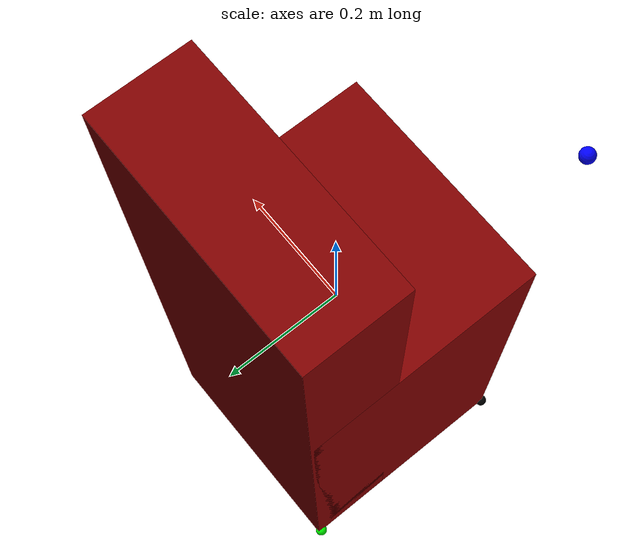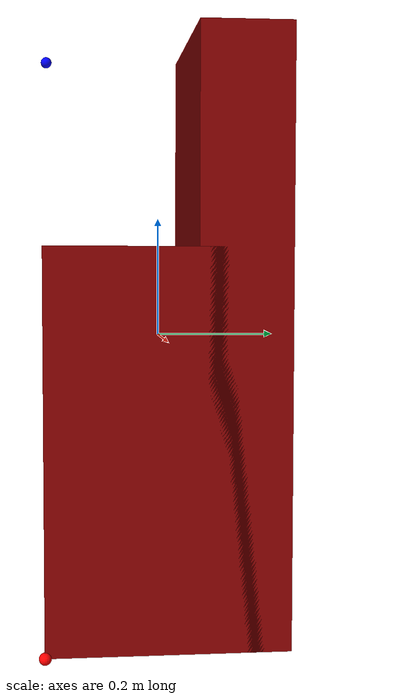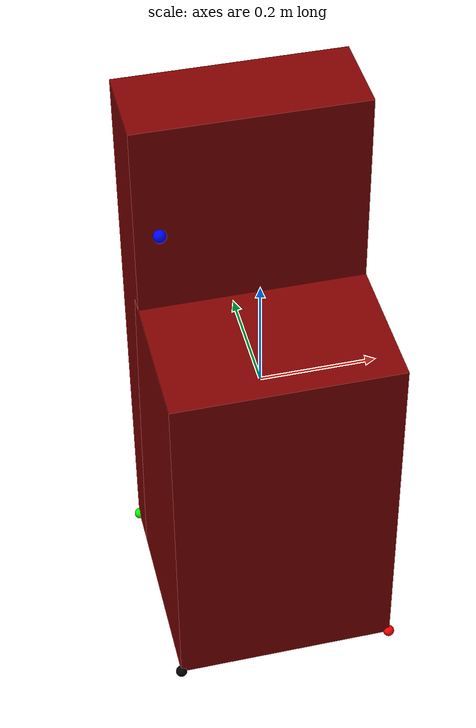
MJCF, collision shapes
<mujoco model="model">
  <asset>
    <texture file="visuals/material_0.png" name="tex-model" type="2d"/>
    <texture type="2d" name="image0" file="visuals/image0.png"/>
    <material name="model" reflectance="0.5" texrepeat="1 1" texture="tex-model" texuniform="false"/>
    <material name="Black_steel" specular="0.5" shininess="0.25" rgba="0.044423 0.048567 0.051766 1.0"/>
    <material name="Plastic_black" specular="0.5" shininess="0.031920879" rgba="0.013314 0.013121 0.013121 1.0"/>
    <material name="Wood" texture="image0" specular="0.5" shininess="0.25"/>
    <mesh file="visuals/model_0.obj" name="model_0_vis" scale="1 1 1"/>
    <mesh file="visuals/model_1.obj" name="model_1_vis" scale="1 1 1"/>
    <mesh file="visuals/model_2.obj" name="model_2_vis" scale="1 1 1"/>
  </asset>
  <default>
    <default class="visual">
      <geom conaffinity="0" contype="0" group="1" type="mesh"/>
    </default>
    <default class="collision">
      <geom group="0" rgba="0.5 0 0 0.5"/>
    </default>
  </default>
  <worldbody>
    <body>
      <!-- exterior bounding box points -->
      <site rgba="0 0 0 1" size="0.01" pos="-0.19248017986037155 -0.1941431276095813 -0.5" name="ext_p0"/>
      <site rgba="1 0 0 1" size="0.01" pos="0.19248017986037155 -0.1941431276095813 -0.5" name="ext_px"/>
      <site rgba="0 1 0 1" size="0.01" pos="-0.19248017986037155 0.1941431276095813 -0.5" name="ext_py"/>
      <site rgba="0 0 1 1" size="0.01" pos="-0.19248017986037155 -0.1941431276095813 0.5" name="ext_pz"/>
      <!-- interior bounding box points -->
      <body name="object">
        <geom solimp="0.998 0.998 0.001" solref="0.001 1" density="100" friction="0.95 0.3 0.1" type="mesh" mesh="model_0_vis" material="Plastic_black" class="visual"/>
        <geom solimp="0.998 0.998 0.001" solref="0.001 1" density="100" friction="0.95 0.3 0.1" type="mesh" mesh="model_1_vis" material="Black_steel" class="visual"/>
        <geom solimp="0.998 0.998 0.001" solref="0.001 1" density="100" friction="0.95 0.3 0.1" type="mesh" mesh="model_2_vis" material="Wood" class="visual"/>
        <geom class="collision" type="box" pos="0 0.125 0" size="0.1929614169022614 0.075 0.5"/>
        <geom class="collision" type="box" pos="0 0 -0.175" size="0.1929614169022614 0.1949996938119393 0.325"/>
      </body>
    </body>
  </worldbody>
</mujoco>
